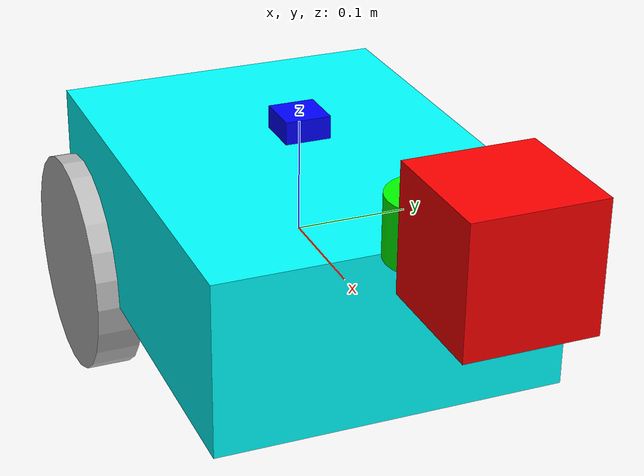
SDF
<sdf version='1.11'>
  <model name='dif_bot'>
    <link name='base_link'>
      <inertial>
        <pose>0.0082125603864734286 0 0.0042512077294685991 0 0 0</pose>
        <mass>10.35</mass>
        <inertia>
          <ixx>0.2065929468599034</ixx>
          <ixy>0</ixy>
          <ixz>-0.01088864734299517</ixz>
          <iyy>0.23064487922705321</iyy>
          <iyz>0</iyz>
          <izz>0.2252019323671498</izz>
        </inertia>
      </inertial>
      <collision name='base_link_collision'>
        <pose>0 0 0 0 0 0</pose>
        <geometry>
          <box>
            <size>0.40000000000000002 0.29999999999999999 0.14999999999999999</size>
          </box>
        </geometry>
      </collision>
      <collision name='base_link_fixed_joint_lump__camera_link_collision_1'>
        <pose>0.34999999999999998 0 0.14999999999999999 0 0 0</pose>
        <geometry>
          <box>
            <size>0.050000000000000003 0.050000000000000003 0.029999999999999999</size>
          </box>
        </geometry>
      </collision>
      <collision name='base_link_fixed_joint_lump__imu_link_collision_2'>
        <pose>0 0 0.10000000000000001 0 0 0</pose>
        <geometry>
          <box>
            <size>0.040000000000000001 0.040000000000000001 0.02</size>
          </box>
        </geometry>
      </collision>
      <collision name='base_link_fixed_joint_lump__lidar_link_collision_3'>
        <pose>0.25 0 0.12 0 0 0</pose>
        <geometry>
          <cylinder>
            <length>0.050000000000000003</length>
            <radius>0.035000000000000003</radius>
          </cylinder>
        </geometry>
      </collision>
      <visual name='base_link_visual'>
        <pose>0 0 0 0 0 0</pose>
        <geometry>
          <box>
            <size>0.40000000000000002 0.29999999999999999 0.14999999999999999</size>
          </box>
        </geometry>
        <material>
          <diffuse>0 1 1 1</diffuse>
          <ambient>0 1 1 1</ambient>
        </material>
      </visual>
      <visual name='base_link_fixed_joint_lump__camera_link_visual_1'>
        <pose>0.34999999999999998 0 0.14999999999999999 0 0 0</pose>
        <geometry>
          <box>
            <size>0.10000000000000001 0.10000000000000001 0.10000000000000001</size>
          </box>
        </geometry>
        <material>
          <diffuse>1 0 0 1</diffuse>
          <ambient>1 0 0 1</ambient>
        </material>
      </visual>
      <visual name='base_link_fixed_joint_lump__imu_link_visual_2'>
        <pose>0 0 0.10000000000000001 0 0 0</pose>
        <geometry>
          <box>
            <size>0.040000000000000001 0.040000000000000001 0.02</size>
          </box>
        </geometry>
        <material>
          <diffuse>0 0 1 1</diffuse>
          <ambient>0 0 1 1</ambient>
        </material>
      </visual>
      <visual name='base_link_fixed_joint_lump__lidar_link_visual_3'>
        <pose>0.25 0 0.12 0 0 0</pose>
        <geometry>
          <cylinder>
            <length>0.050000000000000003</length>
            <radius>0.035000000000000003</radius>
          </cylinder>
        </geometry>
        <material>
          <diffuse>0 1 0 1</diffuse>
          <ambient>0 1 0 1</ambient>
        </material>
      </visual>
    </link>
    <joint name='left_wheel_joint' type='revolute'>
      <pose relative_to='base_link'>-0.14999999999999999 0.14999999999999999 -0.074999999999999997 1.5708 0 0</pose>
      <parent>base_link</parent>
      <child>left_wheel</child>
      <axis>
        <xyz>0 1 0</xyz>
        <limit>
          <lower>-inf</lower>
          <upper>inf</upper>
        </limit>
        <dynamics>
          <spring_reference>0</spring_reference>
          <spring_stiffness>0</spring_stiffness>
        </dynamics>
      </axis>
    </joint>
    <link name='left_wheel'>
      <pose relative_to='left_wheel_joint'>0 0 0 0 0 0</pose>
      <inertial>
        <pose>0 0 0 0 0 0</pose>
        <mass>0.5</mass>
        <inertia>
          <ixx>0.01</ixx>
          <ixy>0</ixy>
          <ixz>0</ixz>
          <iyy>0.01</iyy>
          <iyz>0</iyz>
          <izz>0.01</izz>
        </inertia>
      </inertial>
      <collision name='left_wheel_collision'>
        <pose>0 0 0 0 0 0</pose>
        <geometry>
          <cylinder>
            <length>0.040000000000000001</length>
            <radius>0.10000000000000001</radius>
          </cylinder>
        </geometry>
      </collision>
      <visual name='left_wheel_visual'>
        <pose>0 0 0 0 0 0</pose>
        <geometry>
          <cylinder>
            <length>0.040000000000000001</length>
            <radius>0.10000000000000001</radius>
          </cylinder>
        </geometry>
        <material>
          <diffuse>0.625 0.625 0.625 1</diffuse>
          <ambient>0.625 0.625 0.625 1</ambient>
        </material>
      </visual>
    </link>
    <joint name='right_wheel_joint' type='revolute'>
      <pose relative_to='base_link'>-0.14999999999999999 -0.14999999999999999 -0.074999999999999997 1.5708 0 0</pose>
      <parent>base_link</parent>
      <child>right_wheel</child>
      <axis>
        <xyz>0 1 0</xyz>
        <limit>
          <lower>-inf</lower>
          <upper>inf</upper>
        </limit>
        <dynamics>
          <spring_reference>0</spring_reference>
          <spring_stiffness>0</spring_stiffness>
        </dynamics>
      </axis>
    </joint>
    <link name='right_wheel'>
      <pose relative_to='right_wheel_joint'>0 0 0 0 0 0</pose>
      <inertial>
        <pose>0 0 0 0 0 0</pose>
        <mass>0.5</mass>
        <inertia>
          <ixx>0.01</ixx>
          <ixy>0</ixy>
          <ixz>0</ixz>
          <iyy>0.01</iyy>
          <iyz>0</iyz>
          <izz>0.01</izz>
        </inertia>
      </inertial>
      <collision name='right_wheel_collision'>
        <pose>0 0 0 0 0 0</pose>
        <geometry>
          <cylinder>
            <length>0.040000000000000001</length>
            <radius>0.10000000000000001</radius>
          </cylinder>
        </geometry>
      </collision>
      <visual name='right_wheel_visual'>
        <pose>0 0 0 0 0 0</pose>
        <geometry>
          <cylinder>
            <length>0.040000000000000001</length>
            <radius>0.10000000000000001</radius>
          </cylinder>
        </geometry>
      </visual>
    </link>
    <frame name='camera_joint' attached_to='base_link'>
      <pose>0.34999999999999998 0 0.14999999999999999 0 0 0</pose>
    </frame>
    <frame name='camera_link' attached_to='camera_joint'>
      <pose>0 0 0 0 0 0</pose>
    </frame>
    <frame name='imu_joint' attached_to='base_link'>
      <pose>0 0 0.10000000000000001 0 0 0</pose>
    </frame>
    <frame name='imu_link' attached_to='imu_joint'>
      <pose>0 0 0 0 0 0</pose>
    </frame>
    <frame name='lidar_joint' attached_to='base_link'>
      <pose>0.25 0 0.12 0 0 0</pose>
    </frame>
    <frame name='lidar_link' attached_to='lidar_joint'>
      <pose>0 0 0 0 0 0</pose>
    </frame>
  </model>
</sdf>
